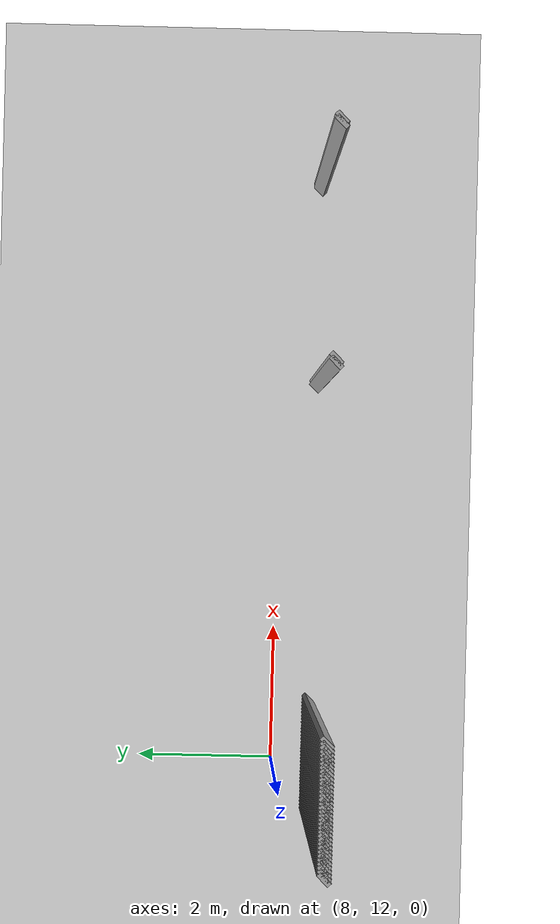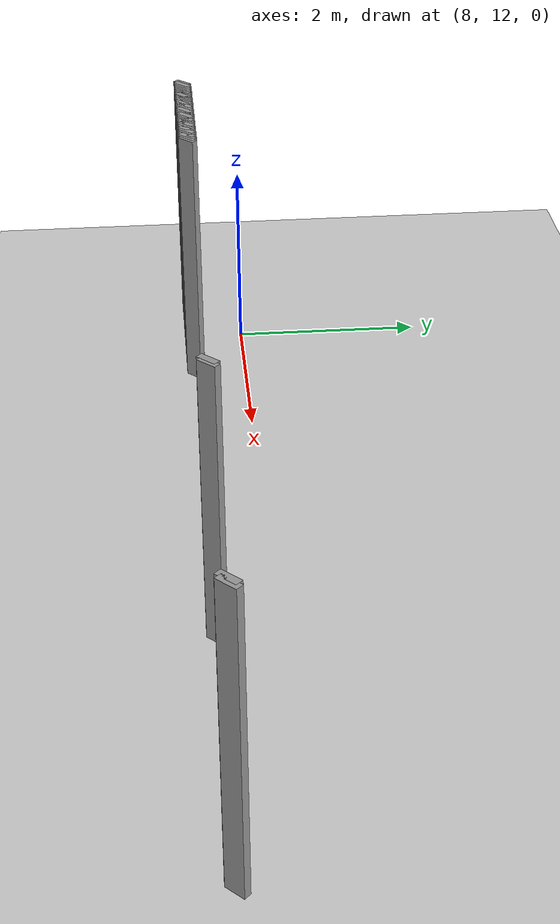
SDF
<sdf version="1.5">
 <world name="default">
  <include><uri>model://ground_plane</uri></include>
  <include><uri>model://sun</uri></include>
  <model name="grey_wall_2756">
   <static>1</static>
   <link name="link">
    <pose>7.2 11.45  1.4 0 0 -0.785398163397</pose>
    <collision name="collision"><geometry><box><size>0.0707106781187 .2  2.8</size></box></geometry></collision>
    <visual name="visual">
     <cast_shadows>0</cast_shadows>
     <geometry><box><size>0.0707106781187 .2  2.8</size></box></geometry>
     <material>
      <script>
       <uri>model://grey_wall/materials/scripts</uri>
       <uri>model://grey_wall/materials/textures</uri>
       <name>vrc/grey_wall</name>
      </script>
     </material>
    </visual>
   </link>
  </model>
  <model name="grey_wall_2757">
   <static>1</static>
   <link name="link">
    <pose>7.25 11.45  1.4 0 0 -0.785398163397</pose>
    <collision name="collision"><geometry><box><size>0.0707106781187 .2  2.8</size></box></geometry></collision>
    <visual name="visual">
     <cast_shadows>0</cast_shadows>
     <geometry><box><size>0.0707106781187 .2  2.8</size></box></geometry>
     <material>
      <script>
       <uri>model://grey_wall/materials/scripts</uri>
       <uri>model://grey_wall/materials/textures</uri>
       <name>vrc/grey_wall</name>
      </script>
     </material>
    </visual>
   </link>
  </model>
  <model name="grey_wall_2758">
   <static>1</static>
   <link name="link">
    <pose>7.3 11.45  1.4 0 0 -0.785398163397</pose>
    <collision name="collision"><geometry><box><size>0.0707106781187 .2  2.8</size></box></geometry></collision>
    <visual name="visual">
     <cast_shadows>0</cast_shadows>
     <geometry><box><size>0.0707106781187 .2  2.8</size></box></geometry>
     <material>
      <script>
       <uri>model://grey_wall/materials/scripts</uri>
       <uri>model://grey_wall/materials/textures</uri>
       <name>vrc/grey_wall</name>
      </script>
     </material>
    </visual>
   </link>
  </model>
  <model name="grey_wall_2759">
   <static>1</static>
   <link name="link">
    <pose>7.35 11.45  1.4 0 0 -0.785398163397</pose>
    <collision name="collision"><geometry><box><size>0.0707106781187 .2  2.8</size></box></geometry></collision>
    <visual name="visual">
     <cast_shadows>0</cast_shadows>
     <geometry><box><size>0.0707106781187 .2  2.8</size></box></geometry>
     <material>
      <script>
       <uri>model://grey_wall/materials/scripts</uri>
       <uri>model://grey_wall/materials/textures</uri>
       <name>vrc/grey_wall</name>
      </script>
     </material>
    </visual>
   </link>
  </model>
  <model name="grey_wall_2760">
   <static>1</static>
   <link name="link">
    <pose>7.4 11.45  1.4 0 0 -0.785398163397</pose>
    <collision name="collision"><geometry><box><size>0.0707106781187 .2  2.8</size></box></geometry></collision>
    <visual name="visual">
     <cast_shadows>0</cast_shadows>
     <geometry><box><size>0.0707106781187 .2  2.8</size></box></geometry>
     <material>
      <script>
       <uri>model://grey_wall/materials/scripts</uri>
       <uri>model://grey_wall/materials/textures</uri>
       <name>vrc/grey_wall</name>
      </script>
     </material>
    </visual>
   </link>
  </model>
  <model name="grey_wall_2761">
   <static>1</static>
   <link name="link">
    <pose>7.45 11.45  1.4 0 0 -0.785398163397</pose>
    <collision name="collision"><geometry><box><size>0.0707106781187 .2  2.8</size></box></geometry></collision>
    <visual name="visual">
     <cast_shadows>0</cast_shadows>
     <geometry><box><size>0.0707106781187 .2  2.8</size></box></geometry>
     <material>
      <script>
       <uri>model://grey_wall/materials/scripts</uri>
       <uri>model://grey_wall/materials/textures</uri>
       <name>vrc/grey_wall</name>
      </script>
     </material>
    </visual>
   </link>
  </model>
  <model name="grey_wall_2762">
   <static>1</static>
   <link name="link">
    <pose>7.5 11.45  1.4 0 0 -0.785398163397</pose>
    <collision name="collision"><geometry><box><size>0.0707106781187 .2  2.8</size></box></geometry></collision>
    <visual name="visual">
     <cast_shadows>0</cast_shadows>
     <geometry><box><size>0.0707106781187 .2  2.8</size></box></geometry>
     <material>
      <script>
       <uri>model://grey_wall/materials/scripts</uri>
       <uri>model://grey_wall/materials/textures</uri>
       <name>vrc/grey_wall</name>
      </script>
     </material>
    </visual>
   </link>
  </model>
  <model name="grey_wall_2763">
   <static>1</static>
   <link name="link">
    <pose>7.55 11.45  1.4 0 0 -0.785398163397</pose>
    <collision name="collision"><geometry><box><size>0.0707106781187 .2  2.8</size></box></geometry></collision>
    <visual name="visual">
     <cast_shadows>0</cast_shadows>
     <geometry><box><size>0.0707106781187 .2  2.8</size></box></geometry>
     <material>
      <script>
       <uri>model://grey_wall/materials/scripts</uri>
       <uri>model://grey_wall/materials/textures</uri>
       <name>vrc/grey_wall</name>
      </script>
     </material>
    </visual>
   </link>
  </model>
  <model name="grey_wall_2764">
   <static>1</static>
   <link name="link">
    <pose>7.6 11.45  1.4 0 0 -0.785398163397</pose>
    <collision name="collision"><geometry><box><size>0.0707106781187 .2  2.8</size></box></geometry></collision>
    <visual name="visual">
     <cast_shadows>0</cast_shadows>
     <geometry><box><size>0.0707106781187 .2  2.8</size></box></geometry>
     <material>
      <script>
       <uri>model://grey_wall/materials/scripts</uri>
       <uri>model://grey_wall/materials/textures</uri>
       <name>vrc/grey_wall</name>
      </script>
     </material>
    </visual>
   </link>
  </model>
  <model name="grey_wall_2765">
   <static>1</static>
   <link name="link">
    <pose>7.65 11.45  1.4 0 0 -0.785398163397</pose>
    <collision name="collision"><geometry><box><size>0.0707106781187 .2  2.8</size></box></geometry></collision>
    <visual name="visual">
     <cast_shadows>0</cast_shadows>
     <geometry><box><size>0.0707106781187 .2  2.8</size></box></geometry>
     <material>
      <script>
       <uri>model://grey_wall/materials/scripts</uri>
       <uri>model://grey_wall/materials/textures</uri>
       <name>vrc/grey_wall</name>
      </script>
     </material>
    </visual>
   </link>
  </model>
  <model name="grey_wall_2766">
   <static>1</static>
   <link name="link">
    <pose>7.7 11.45  1.4 0 0 -0.785398163397</pose>
    <collision name="collision"><geometry><box><size>0.0707106781187 .2  2.8</size></box></geometry></collision>
    <visual name="visual">
     <cast_shadows>0</cast_shadows>
     <geometry><box><size>0.0707106781187 .2  2.8</size></box></geometry>
     <material>
      <script>
       <uri>model://grey_wall/materials/scripts</uri>
       <uri>model://grey_wall/materials/textures</uri>
       <name>vrc/grey_wall</name>
      </script>
     </material>
    </visual>
   </link>
  </model>
  <model name="grey_wall_2767">
   <static>1</static>
   <link name="link">
    <pose>7.75 11.45  1.4 0 0 -0.785398163397</pose>
    <collision name="collision"><geometry><box><size>0.0707106781187 .2  2.8</size></box></geometry></collision>
    <visual name="visual">
     <cast_shadows>0</cast_shadows>
     <geometry><box><size>0.0707106781187 .2  2.8</size></box></geometry>
     <material>
      <script>
       <uri>model://grey_wall/materials/scripts</uri>
       <uri>model://grey_wall/materials/textures</uri>
       <name>vrc/grey_wall</name>
      </script>
     </material>
    </visual>
   </link>
  </model>
  <model name="grey_wall_2768">
   <static>1</static>
   <link name="link">
    <pose>7.8 11.45  1.4 0 0 -0.785398163397</pose>
    <collision name="collision"><geometry><box><size>0.0707106781187 .2  2.8</size></box></geometry></collision>
    <visual name="visual">
     <cast_shadows>0</cast_shadows>
     <geometry><box><size>0.0707106781187 .2  2.8</size></box></geometry>
     <material>
      <script>
       <uri>model://grey_wall/materials/scripts</uri>
       <uri>model://grey_wall/materials/textures</uri>
       <name>vrc/grey_wall</name>
      </script>
     </material>
    </visual>
   </link>
  </model>
  <model name="grey_wall_2769">
   <static>1</static>
   <link name="link">
    <pose>7.85 11.45  1.4 0 0 -0.785398163397</pose>
    <collision name="collision"><geometry><box><size>0.0707106781187 .2  2.8</size></box></geometry></collision>
    <visual name="visual">
     <cast_shadows>0</cast_shadows>
     <geometry><box><size>0.0707106781187 .2  2.8</size></box></geometry>
     <material>
      <script>
       <uri>model://grey_wall/materials/scripts</uri>
       <uri>model://grey_wall/materials/textures</uri>
       <name>vrc/grey_wall</name>
      </script>
     </material>
    </visual>
   </link>
  </model>
  <model name="grey_wall_2770">
   <static>1</static>
   <link name="link">
    <pose>7.9 11.45  1.4 0 0 -0.785398163397</pose>
    <collision name="collision"><geometry><box><size>0.0707106781187 .2  2.8</size></box></geometry></collision>
    <visual name="visual">
     <cast_shadows>0</cast_shadows>
     <geometry><box><size>0.0707106781187 .2  2.8</size></box></geometry>
     <material>
      <script>
       <uri>model://grey_wall/materials/scripts</uri>
       <uri>model://grey_wall/materials/textures</uri>
       <name>vrc/grey_wall</name>
      </script>
     </material>
    </visual>
   </link>
  </model>
  <model name="grey_wall_2771">
   <static>1</static>
   <link name="link">
    <pose>7.95 11.45  1.4 0 0 -0.785398163397</pose>
    <collision name="collision"><geometry><box><size>0.0707106781187 .2  2.8</size></box></geometry></collision>
    <visual name="visual">
     <cast_shadows>0</cast_shadows>
     <geometry><box><size>0.0707106781187 .2  2.8</size></box></geometry>
     <material>
      <script>
       <uri>model://grey_wall/materials/scripts</uri>
       <uri>model://grey_wall/materials/textures</uri>
       <name>vrc/grey_wall</name>
      </script>
     </material>
    </visual>
   </link>
  </model>
  <model name="grey_wall_2772">
   <static>1</static>
   <link name="link">
    <pose>8.0 11.45  1.4 0 0 -0.785398163397</pose>
    <collision name="collision"><geometry><box><size>0.0707106781187 .2  2.8</size></box></geometry></collision>
    <visual name="visual">
     <cast_shadows>0</cast_shadows>
     <geometry><box><size>0.0707106781187 .2  2.8</size></box></geometry>
     <material>
      <script>
       <uri>model://grey_wall/materials/scripts</uri>
       <uri>model://grey_wall/materials/textures</uri>
       <name>vrc/grey_wall</name>
      </script>
     </material>
    </visual>
   </link>
  </model>
  <model name="grey_wall_2773">
   <static>1</static>
   <link name="link">
    <pose>8.05 11.45  1.4 0 0 -0.785398163397</pose>
    <collision name="collision"><geometry><box><size>0.0707106781187 .2  2.8</size></box></geometry></collision>
    <visual name="visual">
     <cast_shadows>0</cast_shadows>
     <geometry><box><size>0.0707106781187 .2  2.8</size></box></geometry>
     <material>
      <script>
       <uri>model://grey_wall/materials/scripts</uri>
       <uri>model://grey_wall/materials/textures</uri>
       <name>vrc/grey_wall</name>
      </script>
     </material>
    </visual>
   </link>
  </model>
  <model name="grey_wall_2774">
   <static>1</static>
   <link name="link">
    <pose>8.1 11.45  1.4 0 0 -0.785398163397</pose>
    <collision name="collision"><geometry><box><size>0.0707106781187 .2  2.8</size></box></geometry></collision>
    <visual name="visual">
     <cast_shadows>0</cast_shadows>
     <geometry><box><size>0.0707106781187 .2  2.8</size></box></geometry>
     <material>
      <script>
       <uri>model://grey_wall/materials/scripts</uri>
       <uri>model://grey_wall/materials/textures</uri>
       <name>vrc/grey_wall</name>
      </script>
     </material>
    </visual>
   </link>
  </model>
  <model name="grey_wall_2775">
   <static>1</static>
   <link name="link">
    <pose>8.15 11.45  1.4 0 0 -0.785398163397</pose>
    <collision name="collision"><geometry><box><size>0.0707106781187 .2  2.8</size></box></geometry></collision>
    <visual name="visual">
     <cast_shadows>0</cast_shadows>
     <geometry><box><size>0.0707106781187 .2  2.8</size></box></geometry>
     <material>
      <script>
       <uri>model://grey_wall/materials/scripts</uri>
       <uri>model://grey_wall/materials/textures</uri>
       <name>vrc/grey_wall</name>
      </script>
     </material>
    </visual>
   </link>
  </model>
  <model name="grey_wall_2776">
   <static>1</static>
   <link name="link">
    <pose>8.2 11.45  1.4 0 0 -0.785398163397</pose>
    <collision name="collision"><geometry><box><size>0.0707106781187 .2  2.8</size></box></geometry></collision>
    <visual name="visual">
     <cast_shadows>0</cast_shadows>
     <geometry><box><size>0.0707106781187 .2  2.8</size></box></geometry>
     <material>
      <script>
       <uri>model://grey_wall/materials/scripts</uri>
       <uri>model://grey_wall/materials/textures</uri>
       <name>vrc/grey_wall</name>
      </script>
     </material>
    </visual>
   </link>
  </model>
  <model name="grey_wall_2777">
   <static>1</static>
   <link name="link">
    <pose>8.25 11.45  1.4 0 0 -0.785398163397</pose>
    <collision name="collision"><geometry><box><size>0.0707106781187 .2  2.8</size></box></geometry></collision>
    <visual name="visual">
     <cast_shadows>0</cast_shadows>
     <geometry><box><size>0.0707106781187 .2  2.8</size></box></geometry>
     <material>
      <script>
       <uri>model://grey_wall/materials/scripts</uri>
       <uri>model://grey_wall/materials/textures</uri>
       <name>vrc/grey_wall</name>
      </script>
     </material>
    </visual>
   </link>
  </model>
  <model name="grey_wall_2778">
   <static>1</static>
   <link name="link">
    <pose>8.3 11.45  1.4 0 0 -0.785398163397</pose>
    <collision name="collision"><geometry><box><size>0.0707106781187 .2  2.8</size></box></geometry></collision>
    <visual name="visual">
     <cast_shadows>0</cast_shadows>
     <geometry><box><size>0.0707106781187 .2  2.8</size></box></geometry>
     <material>
      <script>
       <uri>model://grey_wall/materials/scripts</uri>
       <uri>model://grey_wall/materials/textures</uri>
       <name>vrc/grey_wall</name>
      </script>
     </material>
    </visual>
   </link>
  </model>
  <model name="grey_wall_2779">
   <static>1</static>
   <link name="link">
    <pose>8.35 11.45  1.4 0 0 -0.785398163397</pose>
    <collision name="collision"><geometry><box><size>0.0707106781187 .2  2.8</size></box></geometry></collision>
    <visual name="visual">
     <cast_shadows>0</cast_shadows>
     <geometry><box><size>0.0707106781187 .2  2.8</size></box></geometry>
     <material>
      <script>
       <uri>model://grey_wall/materials/scripts</uri>
       <uri>model://grey_wall/materials/textures</uri>
       <name>vrc/grey_wall</name>
      </script>
     </material>
    </visual>
   </link>
  </model>
  <model name="grey_wall_2780">
   <static>1</static>
   <link name="link">
    <pose>8.4 11.45  1.4 0 0 -0.785398163397</pose>
    <collision name="collision"><geometry><box><size>0.0707106781187 .2  2.8</size></box></geometry></collision>
    <visual name="visual">
     <cast_shadows>0</cast_shadows>
     <geometry><box><size>0.0707106781187 .2  2.8</size></box></geometry>
     <material>
      <script>
       <uri>model://grey_wall/materials/scripts</uri>
       <uri>model://grey_wall/materials/textures</uri>
       <name>vrc/grey_wall</name>
      </script>
     </material>
    </visual>
   </link>
  </model>
  <model name="grey_wall_2781">
   <static>1</static>
   <link name="link">
    <pose>8.45 11.45  1.4 0 0 -0.785398163397</pose>
    <collision name="collision"><geometry><box><size>0.0707106781187 .2  2.8</size></box></geometry></collision>
    <visual name="visual">
     <cast_shadows>0</cast_shadows>
     <geometry><box><size>0.0707106781187 .2  2.8</size></box></geometry>
     <material>
      <script>
       <uri>model://grey_wall/materials/scripts</uri>
       <uri>model://grey_wall/materials/textures</uri>
       <name>vrc/grey_wall</name>
      </script>
     </material>
    </visual>
   </link>
  </model>
  <model name="grey_wall_2782">
   <static>1</static>
   <link name="link">
    <pose>8.5 11.45  1.4 0 0 -0.785398163397</pose>
    <collision name="collision"><geometry><box><size>0.0707106781187 .2  2.8</size></box></geometry></collision>
    <visual name="visual">
     <cast_shadows>0</cast_shadows>
     <geometry><box><size>0.0707106781187 .2  2.8</size></box></geometry>
     <material>
      <script>
       <uri>model://grey_wall/materials/scripts</uri>
       <uri>model://grey_wall/materials/textures</uri>
       <name>vrc/grey_wall</name>
      </script>
     </material>
    </visual>
   </link>
  </model>
  <model name="grey_wall_2783">
   <static>1</static>
   <link name="link">
    <pose>8.55 11.45  1.4 0 0 -0.785398163397</pose>
    <collision name="collision"><geometry><box><size>0.0707106781187 .2  2.8</size></box></geometry></collision>
    <visual name="visual">
     <cast_shadows>0</cast_shadows>
     <geometry><box><size>0.0707106781187 .2  2.8</size></box></geometry>
     <material>
      <script>
       <uri>model://grey_wall/materials/scripts</uri>
       <uri>model://grey_wall/materials/textures</uri>
       <name>vrc/grey_wall</name>
      </script>
     </material>
    </visual>
   </link>
  </model>
  <model name="grey_wall_2784">
   <static>1</static>
   <link name="link">
    <pose>8.6 11.45  1.4 0 0 -0.785398163397</pose>
    <collision name="collision"><geometry><box><size>0.0707106781187 .2  2.8</size></box></geometry></collision>
    <visual name="visual">
     <cast_shadows>0</cast_shadows>
     <geometry><box><size>0.0707106781187 .2  2.8</size></box></geometry>
     <material>
      <script>
       <uri>model://grey_wall/materials/scripts</uri>
       <uri>model://grey_wall/materials/textures</uri>
       <name>vrc/grey_wall</name>
      </script>
     </material>
    </visual>
   </link>
  </model>
  <model name="grey_wall_2785">
   <static>1</static>
   <link name="link">
    <pose>8.65 11.45  1.4 0 0 -0.785398163397</pose>
    <collision name="collision"><geometry><box><size>0.0707106781187 .2  2.8</size></box></geometry></collision>
    <visual name="visual">
     <cast_shadows>0</cast_shadows>
     <geometry><box><size>0.0707106781187 .2  2.8</size></box></geometry>
     <material>
      <script>
       <uri>model://grey_wall/materials/scripts</uri>
       <uri>model://grey_wall/materials/textures</uri>
       <name>vrc/grey_wall</name>
      </script>
     </material>
    </visual>
   </link>
  </model>
  <model name="grey_wall_2786">
   <static>1</static>
   <link name="link">
    <pose>8.7 11.45  1.4 0 0 -0.785398163397</pose>
    <collision name="collision"><geometry><box><size>0.0707106781187 .2  2.8</size></box></geometry></collision>
    <visual name="visual">
     <cast_shadows>0</cast_shadows>
     <geometry><box><size>0.0707106781187 .2  2.8</size></box></geometry>
     <material>
      <script>
       <uri>model://grey_wall/materials/scripts</uri>
       <uri>model://grey_wall/materials/textures</uri>
       <name>vrc/grey_wall</name>
      </script>
     </material>
    </visual>
   </link>
  </model>
  <model name="grey_wall_2787">
   <static>1</static>
   <link name="link">
    <pose>8.75 11.45  1.4 0 0 -0.785398163397</pose>
    <collision name="collision"><geometry><box><size>0.0707106781187 .2  2.8</size></box></geometry></collision>
    <visual name="visual">
     <cast_shadows>0</cast_shadows>
     <geometry><box><size>0.0707106781187 .2  2.8</size></box></geometry>
     <material>
      <script>
       <uri>model://grey_wall/materials/scripts</uri>
       <uri>model://grey_wall/materials/textures</uri>
       <name>vrc/grey_wall</name>
      </script>
     </material>
    </visual>
   </link>
  </model>
  <model name="grey_wall_2788">
   <static>1</static>
   <link name="link">
    <pose>8.8 11.45  1.4 0 0 -0.785398163397</pose>
    <collision name="collision"><geometry><box><size>0.0707106781187 .2  2.8</size></box></geometry></collision>
    <visual name="visual">
     <cast_shadows>0</cast_shadows>
     <geometry><box><size>0.0707106781187 .2  2.8</size></box></geometry>
     <material>
      <script>
       <uri>model://grey_wall/materials/scripts</uri>
       <uri>model://grey_wall/materials/textures</uri>
       <name>vrc/grey_wall</name>
      </script>
     </material>
    </visual>
   </link>
  </model>
  <model name="grey_wall_2789">
   <static>1</static>
   <link name="link">
    <pose>8.85 11.45  1.4 0 0 -0.785398163397</pose>
    <collision name="collision"><geometry><box><size>0.0707106781187 .2  2.8</size></box></geometry></collision>
    <visual name="visual">
     <cast_shadows>0</cast_shadows>
     <geometry><box><size>0.0707106781187 .2  2.8</size></box></geometry>
     <material>
      <script>
       <uri>model://grey_wall/materials/scripts</uri>
       <uri>model://grey_wall/materials/textures</uri>
       <name>vrc/grey_wall</name>
      </script>
     </material>
    </visual>
   </link>
  </model>
  <model name="grey_wall_2790">
   <static>1</static>
   <link name="link">
    <pose>8.9 11.45  1.4 0 0 -0.785398163397</pose>
    <collision name="collision"><geometry><box><size>0.0707106781187 .2  2.8</size></box></geometry></collision>
    <visual name="visual">
     <cast_shadows>0</cast_shadows>
     <geometry><box><size>0.0707106781187 .2  2.8</size></box></geometry>
     <material>
      <script>
       <uri>model://grey_wall/materials/scripts</uri>
       <uri>model://grey_wall/materials/textures</uri>
       <name>vrc/grey_wall</name>
      </script>
     </material>
    </visual>
   </link>
  </model>
  <model name="grey_wall_2791">
   <static>1</static>
   <link name="link">
    <pose>13.65 11.45  1.4 0 0 -0.785398163397</pose>
    <collision name="collision"><geometry><box><size>0.0707106781187 .2  2.8</size></box></geometry></collision>
    <visual name="visual">
     <cast_shadows>0</cast_shadows>
     <geometry><box><size>0.0707106781187 .2  2.8</size></box></geometry>
     <material>
      <script>
       <uri>model://grey_wall/materials/scripts</uri>
       <uri>model://grey_wall/materials/textures</uri>
       <name>vrc/grey_wall</name>
      </script>
     </material>
    </visual>
   </link>
  </model>
  <model name="grey_wall_2792">
   <static>1</static>
   <link name="link">
    <pose>13.7 11.45  1.4 0 0 -0.785398163397</pose>
    <collision name="collision"><geometry><box><size>0.0707106781187 .2  2.8</size></box></geometry></collision>
    <visual name="visual">
     <cast_shadows>0</cast_shadows>
     <geometry><box><size>0.0707106781187 .2  2.8</size></box></geometry>
     <material>
      <script>
       <uri>model://grey_wall/materials/scripts</uri>
       <uri>model://grey_wall/materials/textures</uri>
       <name>vrc/grey_wall</name>
      </script>
     </material>
    </visual>
   </link>
  </model>
  <model name="grey_wall_2793">
   <static>1</static>
   <link name="link">
    <pose>16.65 11.45  1.4 0 0 -0.785398163397</pose>
    <collision name="collision"><geometry><box><size>0.0707106781187 .2  2.8</size></box></geometry></collision>
    <visual name="visual">
     <cast_shadows>0</cast_shadows>
     <geometry><box><size>0.0707106781187 .2  2.8</size></box></geometry>
     <material>
      <script>
       <uri>model://grey_wall/materials/scripts</uri>
       <uri>model://grey_wall/materials/textures</uri>
       <name>vrc/grey_wall</name>
      </script>
     </material>
    </visual>
   </link>
  </model>
  <model name="grey_wall_2794">
   <static>1</static>
   <link name="link">
    <pose>16.7 11.45  1.4 0 0 -0.785398163397</pose>
    <collision name="collision"><geometry><box><size>0.0707106781187 .2  2.8</size></box></geometry></collision>
    <visual name="visual">
     <cast_shadows>0</cast_shadows>
     <geometry><box><size>0.0707106781187 .2  2.8</size></box></geometry>
     <material>
      <script>
       <uri>model://grey_wall/materials/scripts</uri>
       <uri>model://grey_wall/materials/textures</uri>
       <name>vrc/grey_wall</name>
      </script>
     </material>
    </visual>
   </link>
  </model>
 </world>
</sdf>
